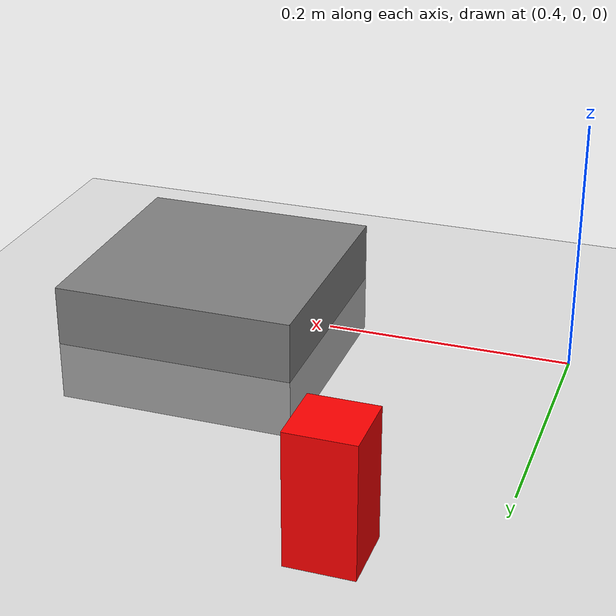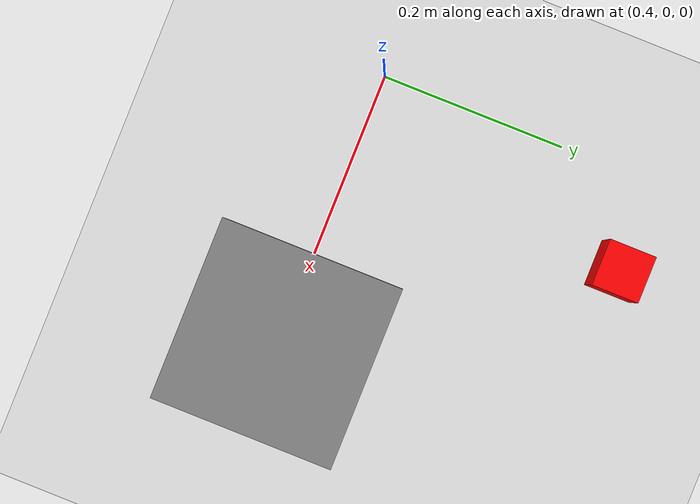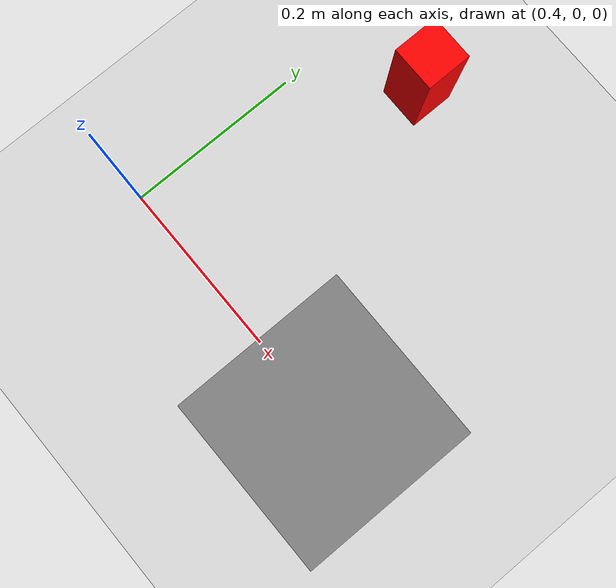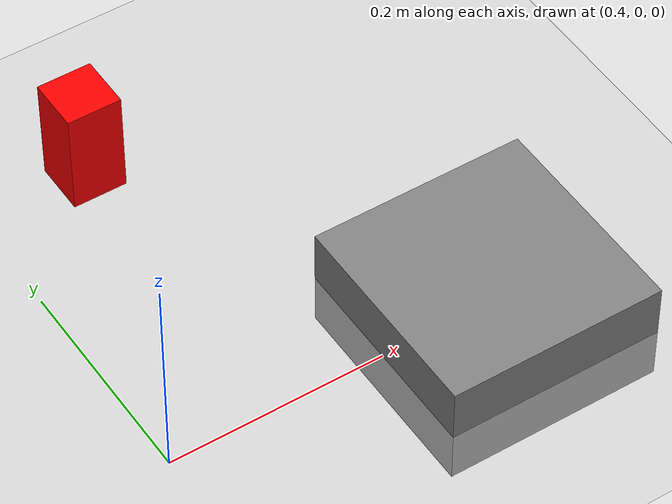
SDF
<?xml version="1.0" ?>
<sdf version="1.6">
  <world name="pick_place_world">
    <include>
      <uri>model://ground_plane</uri>
    </include>

    <include>
      <uri>model://sun</uri>
    </include>

    <!-- Colored Block -->
    <model name="colored_block">
      <pose>0.5 0.3 0.05 0 0 0</pose>
      <static>false</static>
      <link name="link">
        <collision name="collision">
          <geometry>
            <box>
              <size>0.05 0.05 0.1</size>
            </box>
          </geometry>
        </collision>
        <visual name="visual">
          <geometry>
            <box>
              <size>0.05 0.05 0.1</size>
            </box>
          </geometry>
          <material>
            <ambient>1 0 0 1</ambient>
            <diffuse>1 0 0 1</diffuse>
            <specular>0.1 0.1 0.1 1</specular>
          </material>
        </visual>
        <inertial>
          <mass>0.1</mass>
          <inertia>
            <ixx>0.0001</ixx>
            <ixy>0</ixy>
            <ixz>0</ixz>
            <iyy>0.0001</iyy>
            <iyz>0</iyz>
            <izz>0.0001</izz>
          </inertia>
        </inertial>
      </link>
    </model>

    <!-- Bin -->
    <model name="bin">
      <pose>0.7 0.0 0.0 0 0 0</pose>
      <static>true</static>
      <link name="link">
        <collision name="collision">
          <geometry>
            <box>
              <size>0.2 0.2 0.1</size>
            </box>
          </geometry>
        </collision>
        <visual name="visual">
          <geometry>
            <box>
              <size>0.2 0.2 0.1</size>
            </box>
          </geometry>
          <material>
            <ambient>0.5 0.5 0.5 1</ambient>
            <diffuse>0.5 0.5 0.5 1</diffuse>
            <specular>0.1 0.1 0.1 1</specular>
          </material>
        </visual>
      </link>
    </model>

    <!-- Camera for block detection -->
    <model name="overhead_camera">
      <pose>0.5 0.0 1.0 0 0.5 0</pose>
      <static>true</static>
      <link name="link">
        <sensor name="camera" type="camera">
          <camera>
            <horizontal_fov>1.3962634</horizontal_fov>
            <image>
              <width>640</width>
              <height>480</height>
            </image>
            <clip>
              <near>0.02</near>
              <far>300</far>
            </clip>
          </camera>
          <always_on>1</always_on>
          <update_rate>30</update_rate>
          <visualize>true</visualize>
          <plugin name="camera_controller" filename="libgazebo_ros_camera.so">
            <camera_name>camera</camera_name>
            <frame_name>camera_link</frame_name>
            <hack_baseline>0.07</hack_baseline>
          </plugin>
        </sensor>
      </link>
    </model>

    <physics type="ode">
      <real_time_update_rate>1000.0</real_time_update_rate>
      <max_step_size>0.001</max_step_size>
      <real_time_factor>1</real_time_factor>
      <ode>
        <solver>
          <type>quick</type>
          <iters>150</iters>
          <sor>1.3</sor>
        </solver>
        <constraints>
          <cfm>0.00001</cfm>
          <erp>0.2</erp>
          <contact_max_correcting_vel>100.0</contact_max_correcting_vel>
          <contact_surface_layer>0.001</contact_surface_layer>
        </constraints>
      </ode>
    </physics>

    <scene>
      <ambient>0.4 0.4 0.4 1</ambient>
      <background>0.7 0.7 0.7 1</background>
      <shadows>true</shadows>
    </scene>
  </world>
</sdf>
